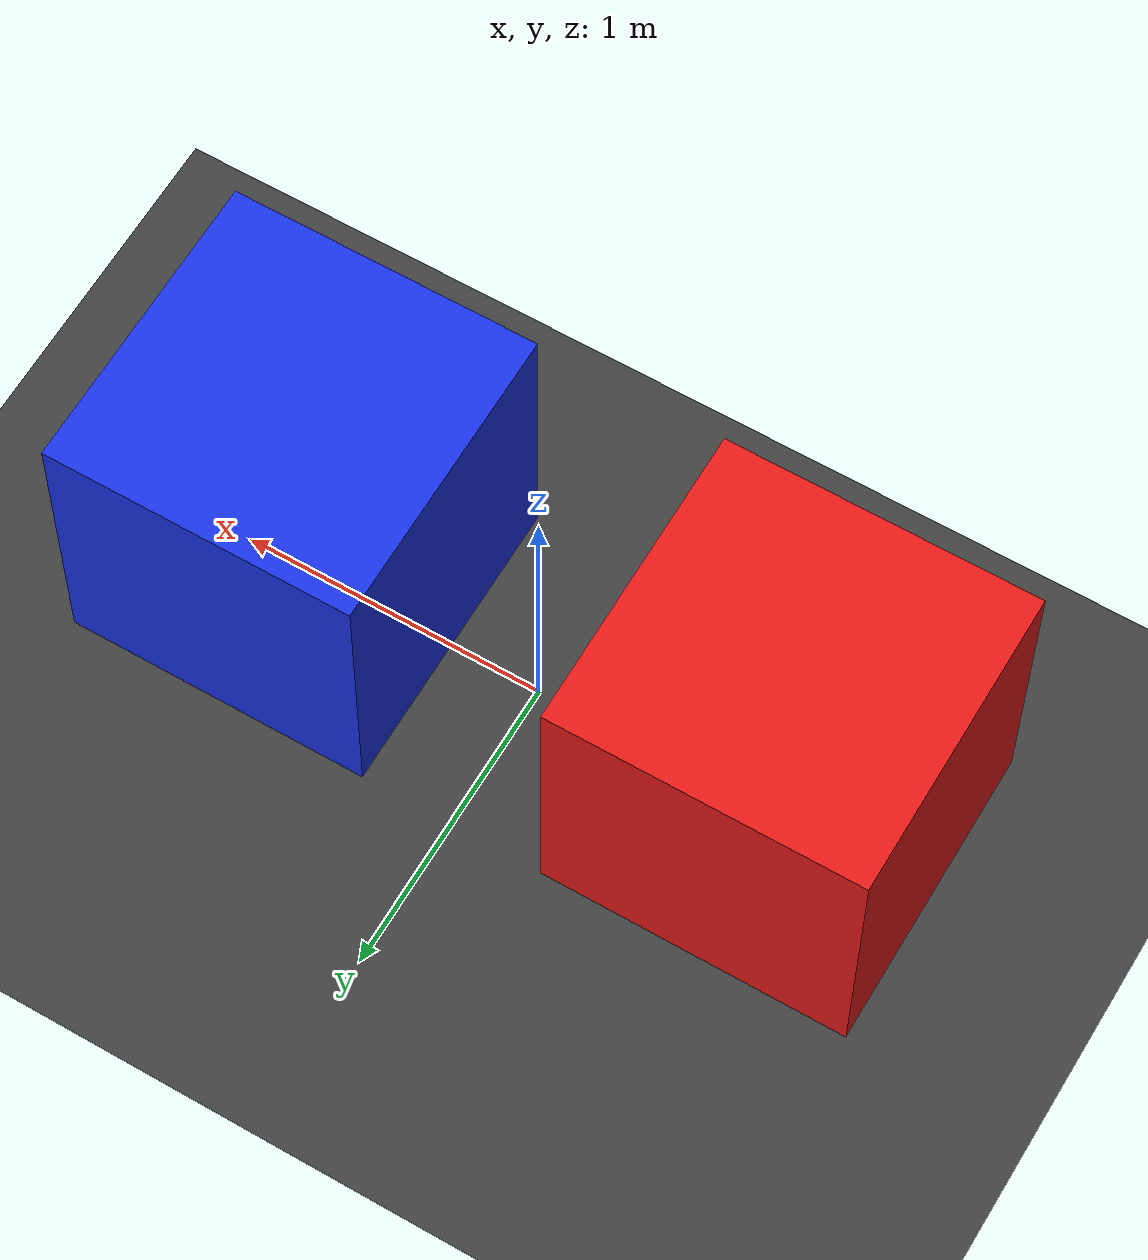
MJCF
<mujoco model="causal_constructivism_blocks">
  <option timestep="0.002" gravity="0 0 -9.81"/>
  <worldbody>
    <light pos="0 0 5"/>
    <camera name="camera_0" pos="5 -7 5" xyaxes="0.8 0.6 0 -0.3 0.4 0.866"/>
    <geom name="table" type="plane" size="5 5 0.1" rgba="0.25 0.25 0.25 1"/>
    <body name="red_block" pos="-0.8 0 0.5">
      <freejoint/>
      <geom name="red_block_geom" type="box" size="0.5 0.5 0.5"
            mass="2" rgba="0.9 0.1 0.1 1" friction="0.8 0.1 0.1"/>
    </body>
    <body name="blue_block" pos="0.8 0 0.5">
      <freejoint/>
      <geom name="blue_block_geom" type="box" size="0.5 0.5 0.5"
            mass="1" rgba="0.1 0.2 0.9 1" friction="0.8 0.1 0.1"/>
    </body>
  </worldbody>
</mujoco>
